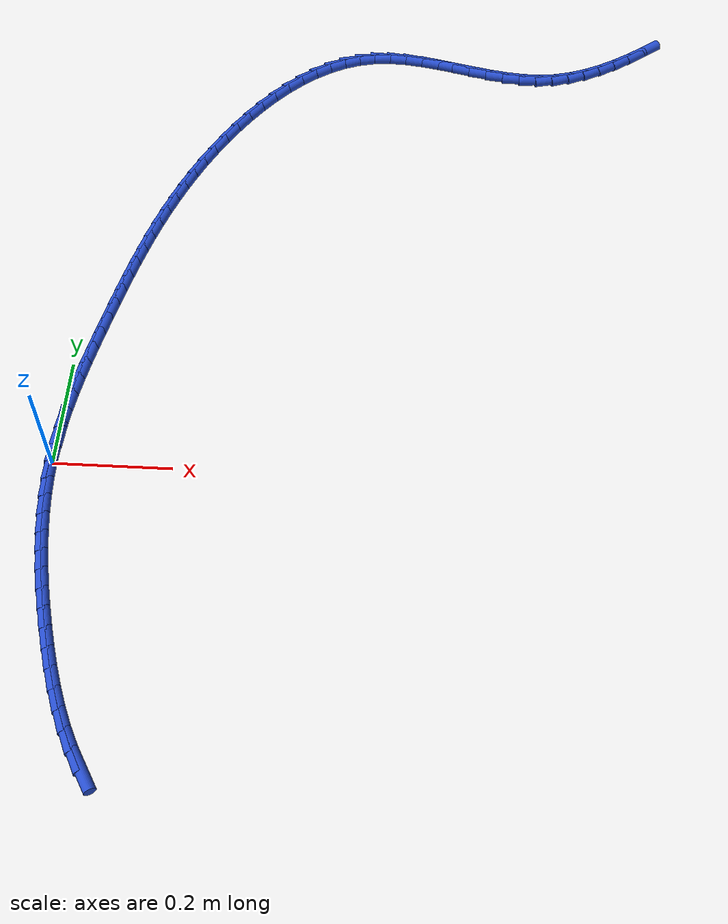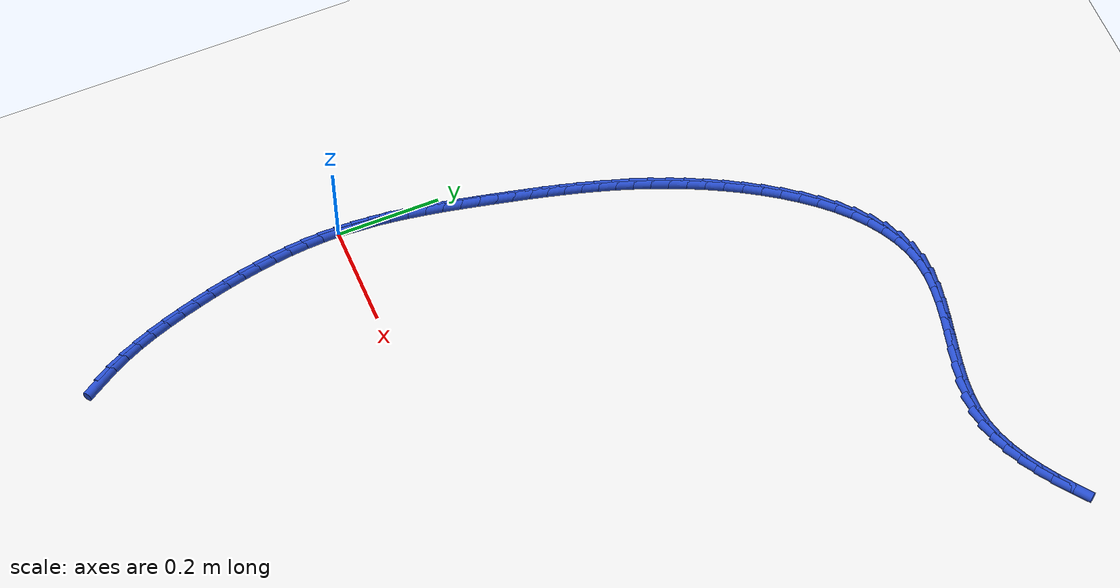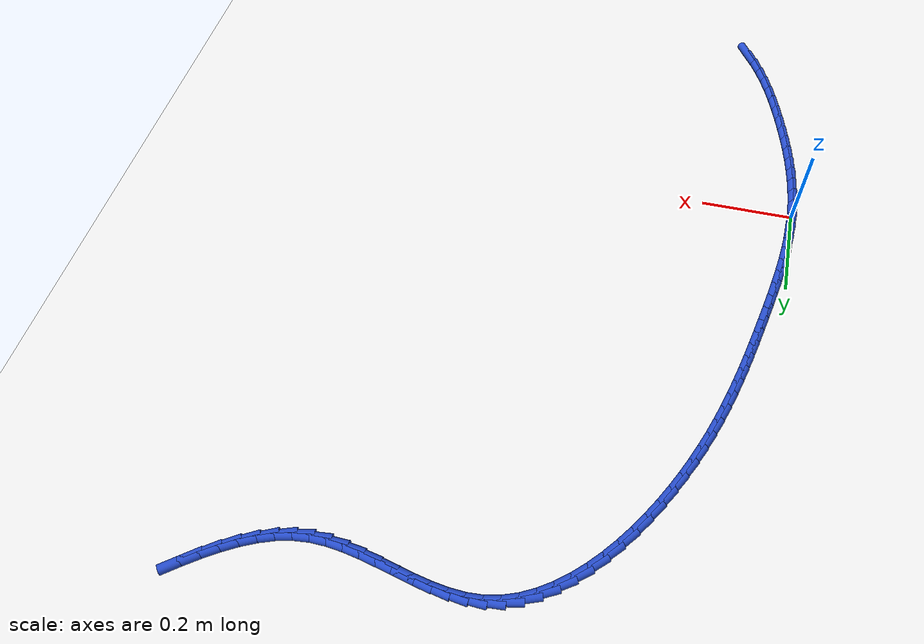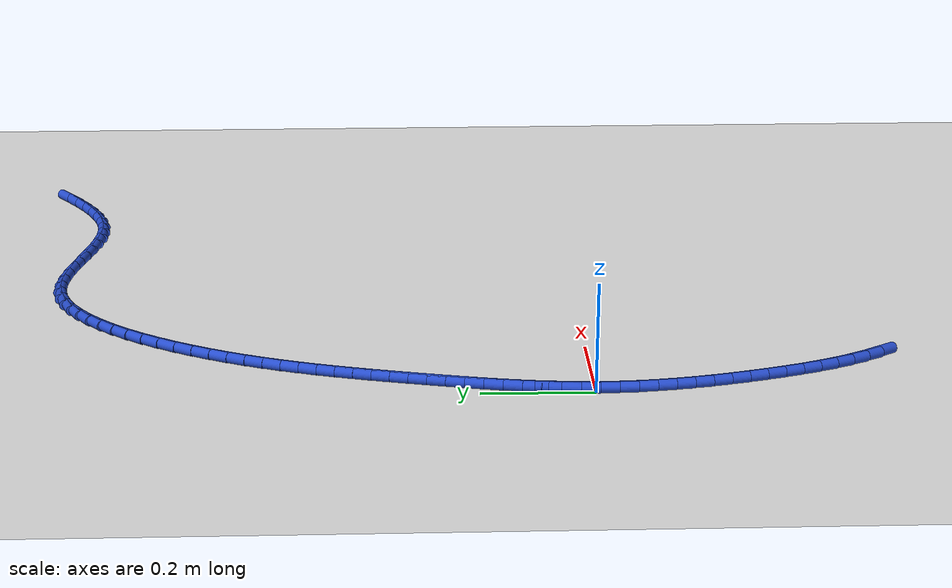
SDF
<sdf version="1.6">
 <world name="default">
  <model name="ground_plane">
   <static>1</static>
   <link name="link">
    <collision name="collision">
     <geometry><plane><normal>0 0 1</normal><size>100 100</size></plane></geometry>
     <surface><friction><ode><mu>100</mu><mu2>50</mu2></ode></friction></surface>
    </collision>
    <visual name="visual">
     <cast_shadows>0</cast_shadows>
     <geometry><plane><normal>0 0 1</normal><size>100 100</size></plane></geometry>
     <material>
      <script><uri>file://media/materials/scripts/gazebo.material</uri><name>Gazebo/WhiteGlow</name></script>
     </material>
    </visual>
   </link>
  </model>
  <model name="line">
   <link name="link_0">
    <pose>-8.673617379884035e-18 8.326672684688674e-17 0.01 0 1.57 1.5353001209414867</pose>
    <collision name="collision">
     <geometry><cylinder><radius>0.01</radius><length>0.08</length></cylinder></geometry>
    </collision>
    <visual name="visual">
     <material>
      <script><name>Gazebo/Blue</name><uri>file://media/materials/scripts/gazebo.material</uri></script>
     </material>
     <geometry><cylinder><radius>0.01</radius><length>0.08</length></cylinder></geometry>
    </visual>
   </link>
   <link name="link_1">
    <pose>0.0011742774707821622 0.033067879007733475 0.01 0 1.57 1.4957067894808103</pose>
    <collision name="collision">
     <geometry><cylinder><radius>0.01</radius><length>0.08</length></cylinder></geometry>
    </collision>
    <visual name="visual">
     <material>
      <script><name>Gazebo/Blue</name><uri>file://media/materials/scripts/gazebo.material</uri></script>
     </material>
     <geometry><cylinder><radius>0.01</radius><length>0.08</length></cylinder></geometry>
    </visual>
   </link>
   <link name="link_2">
    <pose>0.003665332530024814 0.06617996759316347 0.01 0 1.57 1.4610182302695347</pose>
    <collision name="collision">
     <geometry><cylinder><radius>0.01</radius><length>0.08</length></cylinder></geometry>
    </collision>
    <visual name="visual">
     <material>
      <script><name>Gazebo/Blue</name><uri>file://media/materials/scripts/gazebo.material</uri></script>
     </material>
     <geometry><cylinder><radius>0.01</radius><length>0.08</length></cylinder></geometry>
    </visual>
   </link>
   <link name="link_3">
    <pose>0.007316007277858137 0.09930130988577432 0.01 0 1.57 1.4311152408605066</pose>
    <collision name="collision">
     <geometry><cylinder><radius>0.01</radius><length>0.08</length></cylinder></geometry>
    </collision>
    <visual name="visual">
     <material>
      <script><name>Gazebo/Blue</name><uri>file://media/materials/scripts/gazebo.material</uri></script>
     </material>
     <geometry><cylinder><radius>0.01</radius><length>0.08</length></cylinder></geometry>
    </visual>
   </link>
   <link name="link_4">
    <pose>0.011969143814412308 0.13239695001505014 0.01 0 1.57 1.4058653112777535</pose>
    <collision name="collision">
     <geometry><cylinder><radius>0.01</radius><length>0.08</length></cylinder></geometry>
    </collision>
    <visual name="visual">
     <material>
      <script><name>Gazebo/Blue</name><uri>file://media/materials/scripts/gazebo.material</uri></script>
     </material>
     <geometry><cylinder><radius>0.01</radius><length>0.08</length></cylinder></geometry>
    </visual>
   </link>
   <link name="link_5">
    <pose>0.017467584239817528 0.16543193211047524 0.01 0 1.57 1.3851417763135176</pose>
    <collision name="collision">
     <geometry><cylinder><radius>0.01</radius><length>0.08</length></cylinder></geometry>
    </collision>
    <visual name="visual">
     <material>
      <script><name>Gazebo/Blue</name><uri>file://media/materials/scripts/gazebo.material</uri></script>
     </material>
     <geometry><cylinder><radius>0.01</radius><length>0.08</length></cylinder></geometry>
    </visual>
   </link>
   <link name="link_6">
    <pose>0.023654170654203974 0.19837130030153366 0.01 0 1.57 1.3688384482015337</pose>
    <collision name="collision">
     <geometry><cylinder><radius>0.01</radius><length>0.08</length></cylinder></geometry>
    </collision>
    <visual name="visual">
     <material>
      <script><name>Gazebo/Blue</name><uri>file://media/materials/scripts/gazebo.material</uri></script>
     </material>
     <geometry><cylinder><radius>0.01</radius><length>0.08</length></cylinder></geometry>
    </visual>
   </link>
   <link name="link_7">
    <pose>0.030371745157701833 0.23118009871770967 0.01 0 1.57 1.3568807059806385</pose>
    <collision name="collision">
     <geometry><cylinder><radius>0.01</radius><length>0.08</length></cylinder></geometry>
    </collision>
    <visual name="visual">
     <material>
      <script><name>Gazebo/Blue</name><uri>file://media/materials/scripts/gazebo.material</uri></script>
     </material>
     <geometry><cylinder><radius>0.01</radius><length>0.08</length></cylinder></geometry>
    </visual>
   </link>
   <link name="link_8">
    <pose>0.037463149850441274 0.26382337148848733 0.01 0 1.57 1.3492338975473133</pose>
    <collision name="collision">
     <geometry><cylinder><radius>0.01</radius><length>0.08</length></cylinder></geometry>
    </collision>
    <visual name="visual">
     <material>
      <script><name>Gazebo/Blue</name><uri>file://media/materials/scripts/gazebo.material</uri></script>
     </material>
     <geometry><cylinder><radius>0.01</radius><length>0.08</length></cylinder></geometry>
    </visual>
   </link>
   <link name="link_9">
    <pose>0.04477123127063619 0.29626616376911413 0.01 0 1.57 1.344517745355926</pose>
    <collision name="collision">
     <geometry><cylinder><radius>0.01</radius><length>0.08</length></cylinder></geometry>
    </collision>
    <visual name="visual">
     <material>
      <script><name>Gazebo/Blue</name><uri>file://media/materials/scripts/gazebo.material</uri></script>
     </material>
     <geometry><cylinder><radius>0.01</radius><length>0.08</length></cylinder></geometry>
    </visual>
   </link>
   <link name="link_10">
    <pose>0.05218870517410429 0.3284850468618031 0.01 0 1.57 1.3379045108034744</pose>
    <collision name="collision">
     <geometry><cylinder><radius>0.01</radius><length>0.08</length></cylinder></geometry>
    </collision>
    <visual name="visual">
     <material>
      <script><name>Gazebo/Blue</name><uri>file://media/materials/scripts/gazebo.material</uri></script>
     </material>
     <geometry><cylinder><radius>0.01</radius><length>0.08</length></cylinder></geometry>
    </visual>
   </link>
   <link name="link_11">
    <pose>0.059781729700653014 0.36049667937119584 0.01 0 1.57 1.3283332568090473</pose>
    <collision name="collision">
     <geometry><cylinder><radius>0.01</radius><length>0.08</length></cylinder></geometry>
    </collision>
    <visual name="visual">
     <material>
      <script><name>Gazebo/Blue</name><uri>file://media/materials/scripts/gazebo.material</uri></script>
     </material>
     <geometry><cylinder><radius>0.01</radius><length>0.08</length></cylinder></geometry>
    </visual>
   </link>
   <link name="link_12">
    <pose>0.06765414536261556 0.39232642933401674 0.01 0 1.57 1.315818975814448</pose>
    <collision name="collision">
     <geometry><cylinder><radius>0.01</radius><length>0.08</length></cylinder></geometry>
    </collision>
    <visual name="visual">
     <material>
      <script><name>Gazebo/Blue</name><uri>file://media/materials/scripts/gazebo.material</uri></script>
     </material>
     <geometry><cylinder><radius>0.01</radius><length>0.08</length></cylinder></geometry>
    </visual>
   </link>
   <link name="link_13">
    <pose>0.07590979267232525 0.42399966478699064 0.01 0 1.57 1.3004079564112108</pose>
    <collision name="collision">
     <geometry><cylinder><radius>0.01</radius><length>0.08</length></cylinder></geometry>
    </collision>
    <visual name="visual">
     <material>
      <script><name>Gazebo/Blue</name><uri>file://media/materials/scripts/gazebo.material</uri></script>
     </material>
     <geometry><cylinder><radius>0.01</radius><length>0.08</length></cylinder></geometry>
    </visual>
   </link>
   <link name="link_14">
    <pose>0.08465251214211529 0.45554175376684186 0.01 0 1.57 1.282180390545579</pose>
    <collision name="collision">
     <geometry><cylinder><radius>0.01</radius><length>0.08</length></cylinder></geometry>
    </collision>
    <visual name="visual">
     <material>
      <script><name>Gazebo/Blue</name><uri>file://media/materials/scripts/gazebo.material</uri></script>
     </material>
     <geometry><cylinder><radius>0.01</radius><length>0.08</length></cylinder></geometry>
    </visual>
   </link>
   <link name="link_15">
    <pose>0.0939861442843189 0.486978064310295 0.01 0 1.57 1.2612525814900366</pose>
    <collision name="collision">
     <geometry><cylinder><radius>0.01</radius><length>0.08</length></cylinder></geometry>
    </collision>
    <visual name="visual">
     <material>
      <script><name>Gazebo/Blue</name><uri>file://media/materials/scripts/gazebo.material</uri></script>
     </material>
     <geometry><cylinder><radius>0.01</radius><length>0.08</length></cylinder></geometry>
    </visual>
   </link>
   <link name="link_16">
    <pose>0.10401452961126935 0.5183339644540745 0.01 0 1.57 1.2377783762765906</pose>
    <collision name="collision">
     <geometry><cylinder><radius>0.01</radius><length>0.08</length></cylinder></geometry>
    </collision>
    <visual name="visual">
     <material>
      <script><name>Gazebo/Blue</name><uri>file://media/materials/scripts/gazebo.material</uri></script>
     </material>
     <geometry><cylinder><radius>0.01</radius><length>0.08</length></cylinder></geometry>
    </visual>
   </link>
   <link name="link_17">
    <pose>0.1148415086352999 0.5496348222349052 0.01 0 1.57 1.2119494171127698</pose>
    <collision name="collision">
     <geometry><cylinder><radius>0.01</radius><length>0.08</length></cylinder></geometry>
    </collision>
    <visual name="visual">
     <material>
      <script><name>Gazebo/Blue</name><uri>file://media/materials/scripts/gazebo.material</uri></script>
     </material>
     <geometry><cylinder><radius>0.01</radius><length>0.08</length></cylinder></geometry>
    </visual>
   </link>
   <link name="link_18">
    <pose>0.12657092186874383 0.5809060056895117 0.01 0 1.57 1.1839938328309823</pose>
    <collision name="collision">
     <geometry><cylinder><radius>0.01</radius><length>0.08</length></cylinder></geometry>
    </collision>
    <visual name="visual">
     <material>
      <script><name>Gazebo/Blue</name><uri>file://media/materials/scripts/gazebo.material</uri></script>
     </material>
     <geometry><cylinder><radius>0.01</radius><length>0.08</length></cylinder></geometry>
    </visual>
   </link>
   <link name="link_19">
    <pose>0.13930660982393436 0.6121728828546182 0.01 0 1.57 1.1541730863898982</pose>
    <collision name="collision">
     <geometry><cylinder><radius>0.01</radius><length>0.08</length></cylinder></geometry>
    </collision>
    <visual name="visual">
     <material>
      <script><name>Gazebo/Blue</name><uri>file://media/materials/scripts/gazebo.material</uri></script>
     </material>
     <geometry><cylinder><radius>0.01</radius><length>0.08</length></cylinder></geometry>
    </visual>
   </link>
   <link name="link_20">
    <pose>0.1531524130132047 0.6434608217669494 0.01 0 1.57 1.1227768590307967</pose>
    <collision name="collision">
     <geometry><cylinder><radius>0.01</radius><length>0.08</length></cylinder></geometry>
    </collision>
    <visual name="visual">
     <material>
      <script><name>Gazebo/Blue</name><uri>file://media/materials/scripts/gazebo.material</uri></script>
     </material>
     <geometry><cylinder><radius>0.01</radius><length>0.08</length></cylinder></geometry>
    </visual>
   </link>
   <link name="link_21">
    <pose>0.1682121719488881 0.6747951904632299 0.01 0 1.57 1.090115018733749</pose>
    <collision name="collision">
     <geometry><cylinder><radius>0.01</radius><length>0.08</length></cylinder></geometry>
    </collision>
    <visual name="visual">
     <material>
      <script><name>Gazebo/Blue</name><uri>file://media/materials/scripts/gazebo.material</uri></script>
     </material>
     <geometry><cylinder><radius>0.01</radius><length>0.08</length></cylinder></geometry>
    </visual>
   </link>
   <link name="link_22">
    <pose>0.18458964301940117 0.7062011150798009 0.01 0 1.57 1.0559707282043507</pose>
    <collision name="collision">
     <geometry><cylinder><radius>0.01</radius><length>0.08</length></cylinder></geometry>
    </collision>
    <visual name="visual">
     <material>
      <script><name>Gazebo/Blue</name><uri>file://media/materials/scripts/gazebo.material</uri></script>
     </material>
     <geometry><cylinder><radius>0.01</radius><length>0.08</length></cylinder></geometry>
    </visual>
   </link>
   <link name="link_23">
    <pose>0.20235277265993912 0.7376007493553216 0.01 0 1.57 1.0187689924796377</pose>
    <collision name="collision">
     <geometry><cylinder><radius>0.01</radius><length>0.08</length></cylinder></geometry>
    </collision>
    <visual name="visual">
     <material>
      <script><name>Gazebo/Blue</name><uri>file://media/materials/scripts/gazebo.material</uri></script>
     </material>
     <geometry><cylinder><radius>0.01</radius><length>0.08</length></cylinder></geometry>
    </visual>
   </link>
   <link name="link_24">
    <pose>0.22147817405943046 0.768653616041526 0.01 0 1.57 0.977477345334185</pose>
    <collision name="collision">
     <geometry><cylinder><radius>0.01</radius><length>0.08</length></cylinder></geometry>
    </collision>
    <visual name="visual">
     <material>
      <script><name>Gazebo/Blue</name><uri>file://media/materials/scripts/gazebo.material</uri></script>
     </material>
     <geometry><cylinder><radius>0.01</radius><length>0.08</length></cylinder></geometry>
    </visual>
   </link>
   <link name="link_25">
    <pose>0.2419281103606396 0.7989779739808871 0.01 0 1.57 0.9311146072057597</pose>
    <collision name="collision">
     <geometry><cylinder><radius>0.01</radius><length>0.08</length></cylinder></geometry>
    </collision>
    <visual name="visual">
     <material>
      <script><name>Gazebo/Blue</name><uri>file://media/materials/scripts/gazebo.material</uri></script>
     </material>
     <geometry><cylinder><radius>0.01</radius><length>0.08</length></cylinder></geometry>
    </visual>
   </link>
   <link name="link_26">
    <pose>0.26366484470633045 0.8281920820158769 0.01 0 1.57 0.8785319398588161</pose>
    <collision name="collision">
     <geometry><cylinder><radius>0.01</radius><length>0.08</length></cylinder></geometry>
    </collision>
    <visual name="visual">
     <material>
      <script><name>Gazebo/Blue</name><uri>file://media/materials/scripts/gazebo.material</uri></script>
     </material>
     <geometry><cylinder><radius>0.01</radius><length>0.08</length></cylinder></geometry>
    </visual>
   </link>
   <link name="link_27">
    <pose>0.2866506402392675 0.8559141989889681 0.01 0 1.57 0.8183814664370493</pose>
    <collision name="collision">
     <geometry><cylinder><radius>0.01</radius><length>0.08</length></cylinder></geometry>
    </collision>
    <visual name="visual">
     <material>
      <script><name>Gazebo/Blue</name><uri>file://media/materials/scripts/gazebo.material</uri></script>
     </material>
     <geometry><cylinder><radius>0.01</radius><length>0.08</length></cylinder></geometry>
    </visual>
   </link>
   <link name="link_28">
    <pose>0.31084776010221465 0.8817625837426328 0.01 0 1.57 0.7491055976990056</pose>
    <collision name="collision">
     <geometry><cylinder><radius>0.01</radius><length>0.08</length></cylinder></geometry>
    </collision>
    <visual name="visual">
     <material>
      <script><name>Gazebo/Blue</name><uri>file://media/materials/scripts/gazebo.material</uri></script>
     </material>
     <geometry><cylinder><radius>0.01</radius><length>0.08</length></cylinder></geometry>
    </visual>
   </link>
   <link name="link_29">
    <pose>0.33621846743793604 0.9053554951193434 0.01 0 1.57 0.6689738906987159</pose>
    <collision name="collision">
     <geometry><cylinder><radius>0.01</radius><length>0.08</length></cylinder></geometry>
    </collision>
    <visual name="visual">
     <material>
      <script><name>Gazebo/Blue</name><uri>file://media/materials/scripts/gazebo.material</uri></script>
     </material>
     <geometry><cylinder><radius>0.01</radius><length>0.08</length></cylinder></geometry>
    </visual>
   </link>
   <link name="link_30">
    <pose>0.3627250253891961 0.9263111919615725 0.01 0 1.57 0.5762148820485062</pose>
    <collision name="collision">
     <geometry><cylinder><radius>0.01</radius><length>0.08</length></cylinder></geometry>
    </collision>
    <visual name="visual">
     <material>
      <script><name>Gazebo/Blue</name><uri>file://media/materials/scripts/gazebo.material</uri></script>
     </material>
     <geometry><cylinder><radius>0.01</radius><length>0.08</length></cylinder></geometry>
    </visual>
   </link>
   <link name="link_31">
    <pose>0.3903296970987588 0.9442479331117927 0.01 0 1.57 0.46931141158815615</pose>
    <collision name="collision">
     <geometry><cylinder><radius>0.01</radius><length>0.08</length></cylinder></geometry>
    </collision>
    <visual name="visual">
     <material>
      <script><name>Gazebo/Blue</name><uri>file://media/materials/scripts/gazebo.material</uri></script>
     </material>
     <geometry><cylinder><radius>0.01</radius><length>0.08</length></cylinder></geometry>
    </visual>
   </link>
   <link name="link_32">
    <pose>0.41899474570938844 0.9587839774124758 0.01 0 1.57 0.34752340794577324</pose>
    <collision name="collision">
     <geometry><cylinder><radius>0.01</radius><length>0.08</length></cylinder></geometry>
    </collision>
    <visual name="visual">
     <material>
      <script><name>Gazebo/Blue</name><uri>file://media/materials/scripts/gazebo.material</uri></script>
     </material>
     <geometry><cylinder><radius>0.01</radius><length>0.08</length></cylinder></geometry>
    </visual>
   </link>
   <link name="link_33">
    <pose>0.44868243436384914 0.9695375837060944 0.01 0 1.57 0.21161473195081293</pose>
    <collision name="collision">
     <geometry><cylinder><radius>0.01</radius><length>0.08</length></cylinder></geometry>
    </collision>
    <visual name="visual">
     <material>
      <script><name>Gazebo/Blue</name><uri>file://media/materials/scripts/gazebo.material</uri></script>
     </material>
     <geometry><cylinder><radius>0.01</radius><length>0.08</length></cylinder></geometry>
    </visual>
   </link>
   <link name="link_34">
    <pose>0.47935502620490505 0.9761270108351213 0.01 0 1.57 0.07047646905747311</pose>
    <collision name="collision">
     <geometry><cylinder><radius>0.01</radius><length>0.08</length></cylinder></geometry>
    </collision>
    <visual name="visual">
     <material>
      <script><name>Gazebo/Blue</name><uri>file://media/materials/scripts/gazebo.material</uri></script>
     </material>
     <geometry><cylinder><radius>0.01</radius><length>0.08</length></cylinder></geometry>
    </visual>
   </link>
   <link name="link_35">
    <pose>0.5109545729239254 0.9783577298122277 0.01 0 1.57 -0.04626918107595633</pose>
    <collision name="collision">
     <geometry><cylinder><radius>0.01</radius><length>0.08</length></cylinder></geometry>
    </collision>
    <visual name="visual">
     <material>
      <script><name>Gazebo/Blue</name><uri>file://media/materials/scripts/gazebo.material</uri></script>
     </material>
     <geometry><cylinder><radius>0.01</radius><length>0.08</length></cylinder></geometry>
    </visual>
   </link>
   <link name="link_36">
    <pose>0.5433342461775045 0.9768584788104856 0.01 0 1.57 -0.1318299741899817</pose>
    <collision name="collision">
     <geometry><cylinder><radius>0.01</radius><length>0.08</length></cylinder></geometry>
    </collision>
    <visual name="visual">
     <material>
      <script><name>Gazebo/Blue</name><uri>file://media/materials/scripts/gazebo.material</uri></script>
     </material>
     <geometry><cylinder><radius>0.01</radius><length>0.08</length></cylinder></geometry>
    </visual>
   </link>
   <link name="link_37">
    <pose>0.5763227933859575 0.9724842298438692 0.01 0 1.57 -0.1890118070029407</pose>
    <collision name="collision">
     <geometry><cylinder><radius>0.01</radius><length>0.08</length></cylinder></geometry>
    </collision>
    <visual name="visual">
     <material>
      <script><name>Gazebo/Blue</name><uri>file://media/materials/scripts/gazebo.material</uri></script>
     </material>
     <geometry><cylinder><radius>0.01</radius><length>0.08</length></cylinder></geometry>
    </visual>
   </link>
   <link name="link_38">
    <pose>0.6097489612698864 0.9660899614075684 0.01 0 1.57 -0.22070667262868462</pose>
    <collision name="collision">
     <geometry><cylinder><radius>0.01</radius><length>0.08</length></cylinder></geometry>
    </collision>
    <visual name="visual">
     <material>
      <script><name>Gazebo/Blue</name><uri>file://media/materials/scripts/gazebo.material</uri></script>
     </material>
     <geometry><cylinder><radius>0.01</radius><length>0.08</length></cylinder></geometry>
    </visual>
   </link>
   <link name="link_39">
    <pose>0.6434414965498937 0.9585306519967739 0.01 0 1.57 -0.22882734550961173</pose>
    <collision name="collision">
     <geometry><cylinder><radius>0.01</radius><length>0.08</length></cylinder></geometry>
    </collision>
    <visual name="visual">
     <material>
      <script><name>Gazebo/Blue</name><uri>file://media/materials/scripts/gazebo.material</uri></script>
     </material>
     <geometry><cylinder><radius>0.01</radius><length>0.08</length></cylinder></geometry>
    </visual>
   </link>
   <link name="link_40">
    <pose>0.6772291459465809 0.9506612801066754 0.01 0 1.57 -0.21394360525984887</pose>
    <collision name="collision">
     <geometry><cylinder><radius>0.01</radius><length>0.08</length></cylinder></geometry>
    </collision>
    <visual name="visual">
     <material>
      <script><name>Gazebo/Blue</name><uri>file://media/materials/scripts/gazebo.material</uri></script>
     </material>
     <geometry><cylinder><radius>0.01</radius><length>0.08</length></cylinder></geometry>
    </visual>
   </link>
   <link name="link_41">
    <pose>0.7109406561805507 0.9433368242324632 0.01 0 1.57 -0.17522650255879166</pose>
    <collision name="collision">
     <geometry><cylinder><radius>0.01</radius><length>0.08</length></cylinder></geometry>
    </collision>
    <visual name="visual">
     <material>
      <script><name>Gazebo/Blue</name><uri>file://media/materials/scripts/gazebo.material</uri></script>
     </material>
     <geometry><cylinder><radius>0.01</radius><length>0.08</length></cylinder></geometry>
    </visual>
   </link>
   <link name="link_42">
    <pose>0.7444047739724049 0.9374122628693278 0.01 0 1.57 -0.11059651663347102</pose>
    <collision name="collision">
     <geometry><cylinder><radius>0.01</radius><length>0.08</length></cylinder></geometry>
    </collision>
    <visual name="visual">
     <material>
      <script><name>Gazebo/Blue</name><uri>file://media/materials/scripts/gazebo.material</uri></script>
     </material>
     <geometry><cylinder><radius>0.01</radius><length>0.08</length></cylinder></geometry>
    </visual>
   </link>
   <link name="link_43">
    <pose>0.7774502460427457 0.9337425745124592 0.01 0 1.57 -0.017247618448354294</pose>
    <collision name="collision">
     <geometry><cylinder><radius>0.01</radius><length>0.08</length></cylinder></geometry>
    </collision>
    <visual name="visual">
     <material>
      <script><name>Gazebo/Blue</name><uri>file://media/materials/scripts/gazebo.material</uri></script>
     </material>
     <geometry><cylinder><radius>0.01</radius><length>0.08</length></cylinder></geometry>
    </visual>
   </link>
   <link name="link_44">
    <pose>0.8099058191121753 0.9331827376570476 0.01 0 1.57 0.10439194263695216</pose>
    <collision name="collision">
     <geometry><cylinder><radius>0.01</radius><length>0.08</length></cylinder></geometry>
    </collision>
    <visual name="visual">
     <material>
      <script><name>Gazebo/Blue</name><uri>file://media/materials/scripts/gazebo.material</uri></script>
     </material>
     <geometry><cylinder><radius>0.01</radius><length>0.08</length></cylinder></geometry>
    </visual>
   </link>
   <link name="link_45">
    <pose>0.841617652394552 0.9365052756315693 0.01 0 1.57 0.22844210950611238</pose>
    <collision name="collision">
     <geometry><cylinder><radius>0.01</radius><length>0.08</length></cylinder></geometry>
    </collision>
    <visual name="visual">
     <material>
      <script><name>Gazebo/Blue</name><uri>file://media/materials/scripts/gazebo.material</uri></script>
     </material>
     <geometry><cylinder><radius>0.01</radius><length>0.08</length></cylinder></geometry>
    </visual>
   </link>
   <link name="link_46">
    <pose>0.8725955761634785 0.9437076633944086 0.01 0 1.57 0.33769323067487267</pose>
    <collision name="collision">
     <geometry><cylinder><radius>0.01</radius><length>0.08</length></cylinder></geometry>
    </collision>
    <visual name="visual">
     <material>
      <script><name>Gazebo/Blue</name><uri>file://media/materials/scripts/gazebo.material</uri></script>
     </material>
     <geometry><cylinder><radius>0.01</radius><length>0.08</length></cylinder></geometry>
    </visual>
   </link>
   <link name="link_47">
    <pose>0.9029391219109102 0.9543626045168275 0.01 0 1.57 0.43012542277948285</pose>
    <collision name="collision">
     <geometry><cylinder><radius>0.01</radius><length>0.08</length></cylinder></geometry>
    </collision>
    <visual name="visual">
     <material>
      <script><name>Gazebo/Blue</name><uri>file://media/materials/scripts/gazebo.material</uri></script>
     </material>
     <geometry><cylinder><radius>0.01</radius><length>0.08</length></cylinder></geometry>
    </visual>
   </link>
   <link name="link_48">
    <pose>0.9327487407334988 0.968038447871574 0.01 0 1.57 0.5056670635639567</pose>
    <collision name="collision">
     <geometry><cylinder><radius>0.01</radius><length>0.08</length></cylinder></geometry>
    </collision>
    <visual name="visual">
     <material>
      <script><name>Gazebo/Blue</name><uri>file://media/materials/scripts/gazebo.material</uri></script>
     </material>
     <geometry><cylinder><radius>0.01</radius><length>0.08</length></cylinder></geometry>
    </visual>
   </link>
   <link name="link_49">
    <pose>0.962124883727896 0.9843035423313952 0.01 0 1.57 0.5652748456763371</pose>
    <collision name="collision">
     <geometry><cylinder><radius>0.01</radius><length>0.08</length></cylinder></geometry>
    </collision>
    <visual name="visual">
     <material>
      <script><name>Gazebo/Blue</name><uri>file://media/materials/scripts/gazebo.material</uri></script>
     </material>
     <geometry><cylinder><radius>0.01</radius><length>0.08</length></cylinder></geometry>
    </visual>
   </link>
   <link name="link_50">
    <pose>0.9911680019907522 1.0027262367690382 0.01 0 1.57 0.6102893308801461</pose>
    <collision name="collision">
     <geometry><cylinder><radius>0.01</radius><length>0.08</length></cylinder></geometry>
    </collision>
    <visual name="visual">
     <material>
      <script><name>Gazebo/Blue</name><uri>file://media/materials/scripts/gazebo.material</uri></script>
     </material>
     <geometry><cylinder><radius>0.01</radius><length>0.08</length></cylinder></geometry>
    </visual>
   </link>
   <link name="link_51">
    <pose>1.0199785466187197 1.0228748800572505 0.01 0 1.57 0.6420293799241206</pose>
    <collision name="collision">
     <geometry><cylinder><radius>0.01</radius><length>0.08</length></cylinder></geometry>
    </collision>
    <visual name="visual">
     <material>
      <script><name>Gazebo/Blue</name><uri>file://media/materials/scripts/gazebo.material</uri></script>
     </material>
     <geometry><cylinder><radius>0.01</radius><length>0.08</length></cylinder></geometry>
    </visual>
   </link>
   <link name="link_194">
    <pose>0.1358326029738766 -0.5147593953646192 0.01 0 1.57 -1.021983254445031</pose>
    <collision name="collision">
     <geometry><cylinder><radius>0.01</radius><length>0.08</length></cylinder></geometry>
    </collision>
    <visual name="visual">
     <material>
      <script><name>Gazebo/Blue</name><uri>file://media/materials/scripts/gazebo.material</uri></script>
     </material>
     <geometry><cylinder><radius>0.01</radius><length>0.08</length></cylinder></geometry>
    </visual>
   </link>
   <link name="link_195">
    <pose>0.11865740560302734 -0.48667117446170494 0.01 0 1.57 -1.0874207024664242</pose>
    <collision name="collision">
     <geometry><cylinder><radius>0.01</radius><length>0.08</length></cylinder></geometry>
    </collision>
    <visual name="visual">
     <material>
      <script><name>Gazebo/Blue</name><uri>file://media/materials/scripts/gazebo.material</uri></script>
     </material>
     <geometry><cylinder><radius>0.01</radius><length>0.08</length></cylinder></geometry>
    </visual>
   </link>
   <link name="link_196">
    <pose>0.10314339170854518 -0.4571155461739978 0.01 0 1.57 -1.1433901725500488</pose>
    <collision name="collision">
     <geometry><cylinder><radius>0.01</radius><length>0.08</length></cylinder></geometry>
    </collision>
    <visual name="visual">
     <material>
      <script><name>Gazebo/Blue</name><uri>file://media/materials/scripts/gazebo.material</uri></script>
     </material>
     <geometry><cylinder><radius>0.01</radius><length>0.08</length></cylinder></geometry>
    </visual>
   </link>
   <link name="link_197">
    <pose>0.08912963182681055 -0.4263488913721887 0.01 0 1.57 -1.1906727828820156</pose>
    <collision name="collision">
     <geometry><cylinder><radius>0.01</radius><length>0.08</length></cylinder></geometry>
    </collision>
    <visual name="visual">
     <material>
      <script><name>Gazebo/Blue</name><uri>file://media/materials/scripts/gazebo.material</uri></script>
     </material>
     <geometry><cylinder><radius>0.01</radius><length>0.08</length></cylinder></geometry>
    </visual>
   </link>
   <link name="link_198">
    <pose>0.07645519649420271 -0.3946275909269657 0.01 0 1.57 -1.230027693690147</pose>
    <collision name="collision">
     <geometry><cylinder><radius>0.01</radius><length>0.08</length></cylinder></geometry>
    </collision>
    <visual name="visual">
     <material>
      <script><name>Gazebo/Blue</name><uri>file://media/materials/scripts/gazebo.material</uri></script>
     </material>
     <geometry><cylinder><radius>0.01</radius><length>0.08</length></cylinder></geometry>
    </visual>
   </link>
   <link name="link_199">
    <pose>0.06495915624710126 -0.36220802570901817 0.01 0 1.57 -1.2621175296234166</pose>
    <collision name="collision">
     <geometry><cylinder><radius>0.01</radius><length>0.08</length></cylinder></geometry>
    </collision>
    <visual name="visual">
     <material>
      <script><name>Gazebo/Blue</name><uri>file://media/materials/scripts/gazebo.material</uri></script>
     </material>
     <geometry><cylinder><radius>0.01</radius><length>0.08</length></cylinder></geometry>
    </visual>
   </link>
   <link name="link_200">
    <pose>0.05448058162188598 -0.32934657658903516 0.01 0 1.57 -1.2874667737680483</pose>
    <collision name="collision">
     <geometry><cylinder><radius>0.01</radius><length>0.08</length></cylinder></geometry>
    </collision>
    <visual name="visual">
     <material>
      <script><name>Gazebo/Blue</name><uri>file://media/materials/scripts/gazebo.material</uri></script>
     </material>
     <geometry><cylinder><radius>0.01</radius><length>0.08</length></cylinder></geometry>
    </visual>
   </link>
   <link name="link_201">
    <pose>0.04485854315493649 -0.29629962443770586 0.01 0 1.57 -1.3077541012017804</pose>
    <collision name="collision">
     <geometry><cylinder><radius>0.01</radius><length>0.08</length></cylinder></geometry>
    </collision>
    <visual name="visual">
     <material>
      <script><name>Gazebo/Blue</name><uri>file://media/materials/scripts/gazebo.material</uri></script>
     </material>
     <geometry><cylinder><radius>0.01</radius><length>0.08</length></cylinder></geometry>
    </visual>
   </link>
   <link name="link_202">
    <pose>0.035968018379815524 -0.2632839216855041 0.01 0 1.57 -1.32921282163125</pose>
    <collision name="collision">
     <geometry><cylinder><radius>0.01</radius><length>0.08</length></cylinder></geometry>
    </collision>
    <visual name="visual">
     <material>
      <script><name>Gazebo/Blue</name><uri>file://media/materials/scripts/gazebo.material</uri></script>
     </material>
     <geometry><cylinder><radius>0.01</radius><length>0.08</length></cylinder></geometry>
    </visual>
   </link>
   <link name="link_203">
    <pose>0.027849255612575282 -0.23033382112392523 0.01 0 1.57 -1.3536470900595539</pose>
    <collision name="collision">
     <geometry><cylinder><radius>0.01</radius><length>0.08</length></cylinder></geometry>
    </collision>
    <visual name="visual">
     <material>
      <script><name>Gazebo/Blue</name><uri>file://media/materials/scripts/gazebo.material</uri></script>
     </material>
     <geometry><cylinder><radius>0.01</radius><length>0.08</length></cylinder></geometry>
    </visual>
   </link>
   <link name="link_204">
    <pose>0.020590022837908242 -0.19743123088198763 0.01 0 1.57 -1.3810965398470734</pose>
    <collision name="collision">
     <geometry><cylinder><radius>0.01</radius><length>0.08</length></cylinder></geometry>
    </collision>
    <visual name="visual">
     <material>
      <script><name>Gazebo/Blue</name><uri>file://media/materials/scripts/gazebo.material</uri></script>
     </material>
     <geometry><cylinder><radius>0.01</radius><length>0.08</length></cylinder></geometry>
    </visual>
   </link>
   <link name="link_205">
    <pose>0.01427809226949399 -0.16455805442142657 0.01 0 1.57 -1.4115785954981799</pose>
    <collision name="collision">
     <geometry><cylinder><radius>0.01</radius><length>0.08</length></cylinder></geometry>
    </collision>
    <visual name="visual">
     <material>
      <script><name>Gazebo/Blue</name><uri>file://media/materials/scripts/gazebo.material</uri></script>
     </material>
     <geometry><cylinder><radius>0.01</radius><length>0.08</length></cylinder></geometry>
    </visual>
   </link>
   <link name="link_206">
    <pose>0.009001236121012115 -0.13169619520397716 0.01 0 1.57 -1.445080669050674</pose>
    <collision name="collision">
     <geometry><cylinder><radius>0.01</radius><length>0.08</length></cylinder></geometry>
    </collision>
    <visual name="visual">
     <material>
      <script><name>Gazebo/Blue</name><uri>file://media/materials/scripts/gazebo.material</uri></script>
     </material>
     <geometry><cylinder><radius>0.01</radius><length>0.08</length></cylinder></geometry>
    </visual>
   </link>
   <link name="link_207">
    <pose>0.0048472266061421986 -0.09882755669137469 0.01 0 1.57 -1.4815516156203983</pose>
    <collision name="collision">
     <geometry><cylinder><radius>0.01</radius><length>0.08</length></cylinder></geometry>
    </collision>
    <visual name="visual">
     <material>
      <script><name>Gazebo/Blue</name><uri>file://media/materials/scripts/gazebo.material</uri></script>
     </material>
     <geometry><cylinder><radius>0.01</radius><length>0.08</length></cylinder></geometry>
    </visual>
   </link>
   <link name="link_208">
    <pose>0.0019038359385638178 -0.06593404234535419 0.01 0 1.57 -1.5208931945220903</pose>
    <collision name="collision">
     <geometry><cylinder><radius>0.01</radius><length>0.08</length></cylinder></geometry>
    </collision>
    <visual name="visual">
     <material>
      <script><name>Gazebo/Blue</name><uri>file://media/materials/scripts/gazebo.material</uri></script>
     </material>
     <geometry><cylinder><radius>0.01</radius><length>0.08</length></cylinder></geometry>
    </visual>
   </link>
   <link name="link_209">
    <pose>0.0002588363319565336 -0.03299755562765012 0.01 0 1.57 -1.5629523814330097</pose>
    <collision name="collision">
     <geometry><cylinder><radius>0.01</radius><length>0.08</length></cylinder></geometry>
    </collision>
    <visual name="visual">
     <material>
      <script><name>Gazebo/Blue</name><uri>file://media/materials/scripts/gazebo.material</uri></script>
     </material>
     <geometry><cylinder><radius>0.01</radius><length>0.08</length></cylinder></geometry>
    </visual>
   </link>
   <link name="link_210">
    <pose>0.0 2.0816681711721685e-17 0.01 0 1.57 1.534077058384432</pose>
    <collision name="collision">
     <geometry><cylinder><radius>0.01</radius><length>0.08</length></cylinder></geometry>
    </collision>
    <visual name="visual">
     <material>
      <script><name>Gazebo/Blue</name><uri>file://media/materials/scripts/gazebo.material</uri></script>
     </material>
     <geometry><cylinder><radius>0.01</radius><length>0.08</length></cylinder></geometry>
    </visual>
   </link>
   <link name="link_211">
    <pose>0.0012150991563737307 0.03307672107586341 0.01 0 1.57 1.4872866432391083</pose>
    <collision name="collision">
     <geometry><cylinder><radius>0.01</radius><length>0.08</length></cylinder></geometry>
    </collision>
    <visual name="visual">
     <material>
      <script><name>Gazebo/Blue</name><uri>file://media/materials/scripts/gazebo.material</uri></script>
     </material>
     <geometry><cylinder><radius>0.01</radius><length>0.08</length></cylinder></geometry>
    </visual>
   </link>
   <link name="link_212">
    <pose>0.003991906014757492 0.06625070413820561 0.01 0 1.57 1.510614543899796</pose>
    <collision name="collision">
     <geometry><cylinder><radius>0.01</radius><length>0.08</length></cylinder></geometry>
    </collision>
    <visual name="visual">
     <material>
      <script><name>Gazebo/Blue</name><uri>file://media/materials/scripts/gazebo.material</uri></script>
     </material>
     <geometry><cylinder><radius>0.01</radius><length>0.08</length></cylinder></geometry>
    </visual>
   </link>
  </model>
 </world>
</sdf>
